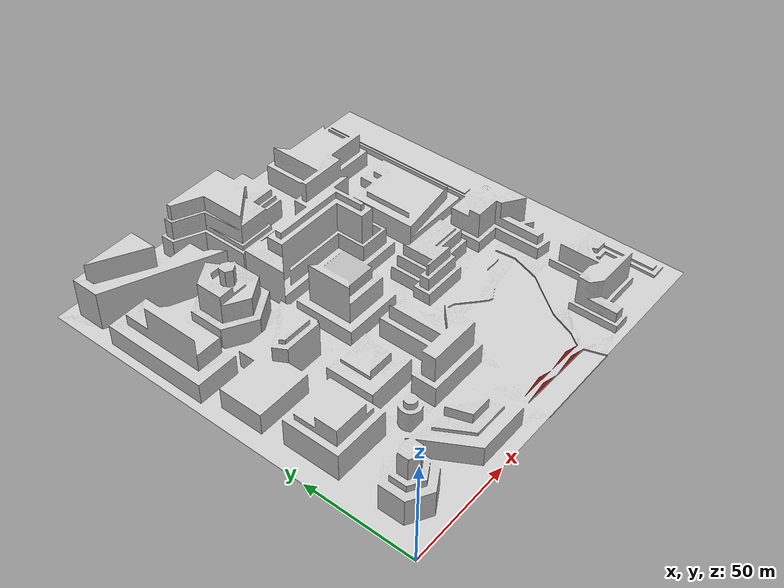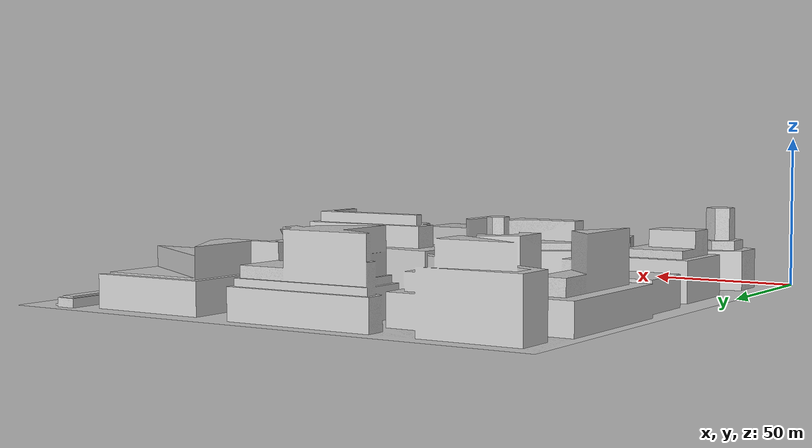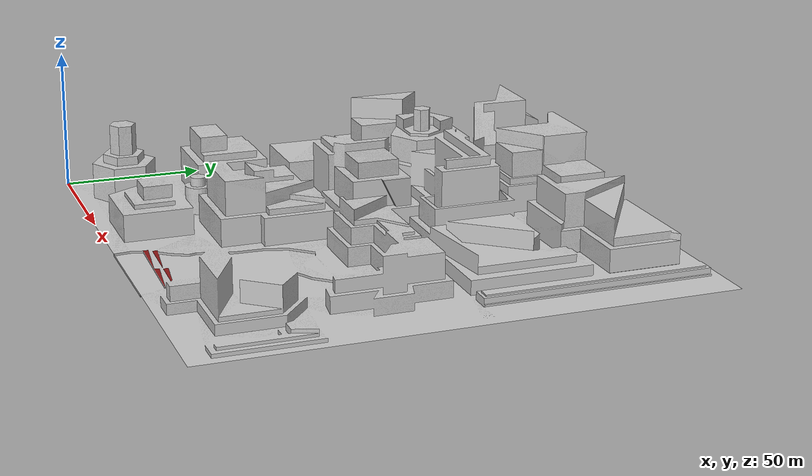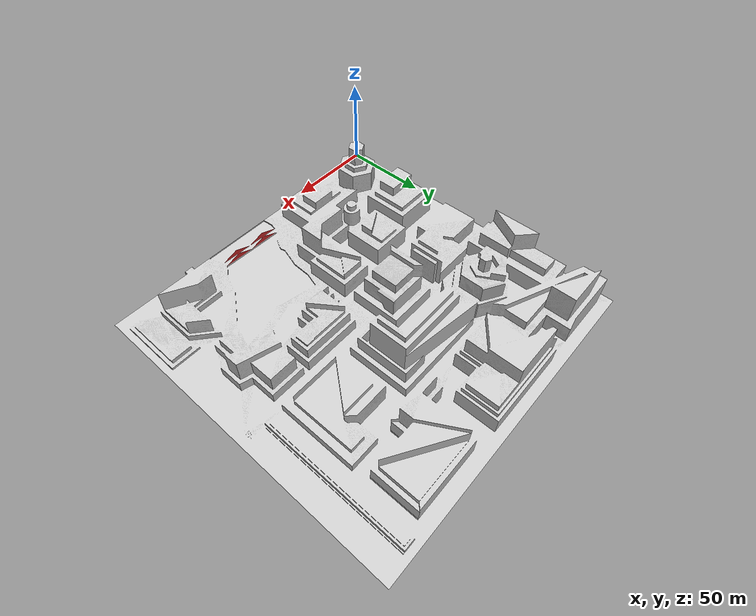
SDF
<?xml version="1.0"?>
<sdf version="1.4">
  <model name="model_city">
    <static>true</static>
    <link name="link">
      <collision name="collision">
        <geometry>
          <mesh>
            <uri>model://modelcity/meshes/city-cool.dae</uri>
          </mesh>
        </geometry>
      </collision>
      <visual name="visual_1">
        <cast_shadows>false</cast_shadows>
        <plugin name="trajectory_visualizer" filename="libtrajectory_visualizer.so"/>
        <geometry>
          <mesh>
            <uri>model://modelcity/meshes/city-cool.dae</uri>
          </mesh>
        </geometry>
      </visual>
    </link>
  </model>
</sdf>
